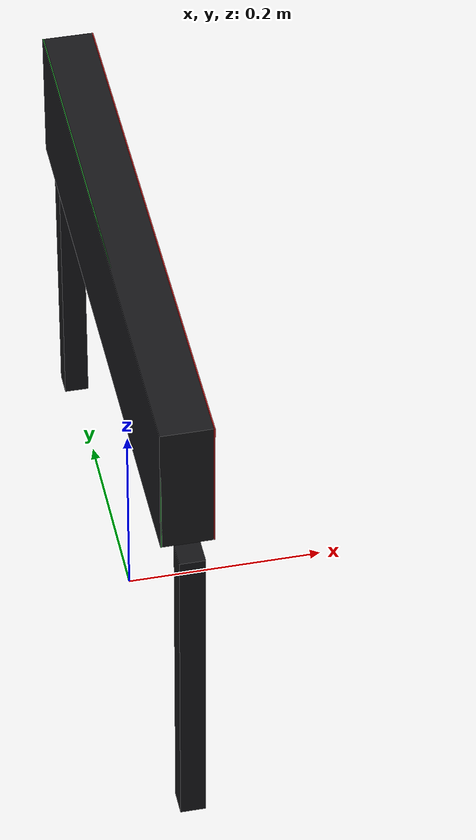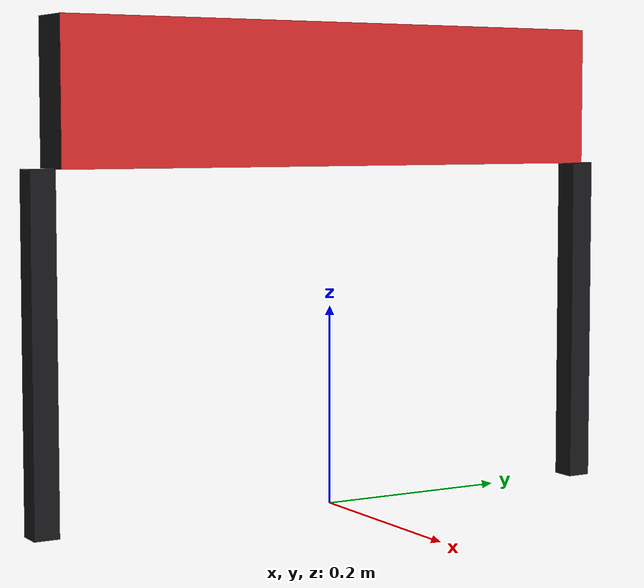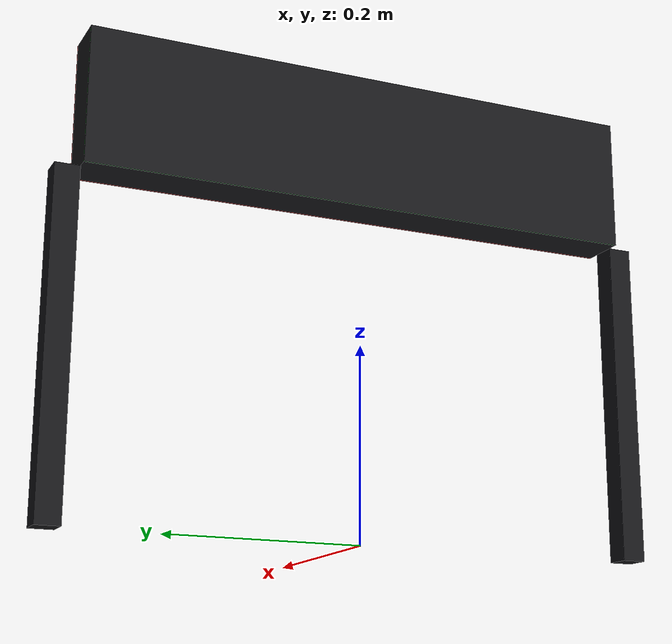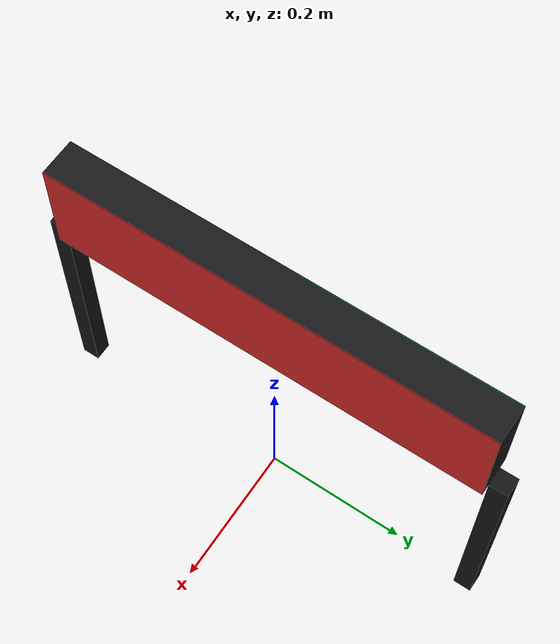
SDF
<?xml version='1.0'?>
<sdf version='1.6'><model name='sq_traffic_light_4p2'><static>true</static><pose>0.0000 0.0000 0.0000 0 0 0.00000</pose><link name='housing'><visual name='housing_vis'><pose>0.0000 0.0000 0.4100 0 0 0.00000</pose><geometry><box><size>0.0500 0.5900 0.1400</size></box></geometry><material><ambient>0.0900 0.0900 0.1000 1.0000</ambient><diffuse>0.0900 0.0900 0.1000 1.0000</diffuse></material></visual></link><link name='front_red'><pose>0.000 0 0 0 0 0</pose><visual name='face_vis'><pose>0.0260 0.0000 0.4100 0 0 0.00000</pose><geometry><box><size>0.0010 0.5900 0.1400</size></box></geometry><material><script><uri>model://sq_competition_assets/materials/scripts</uri><uri>model://sq_competition_assets/materials/textures</uri><name>SQ4_Light_Red</name></script><ambient>1 1 1 1</ambient><diffuse>1 1 1 1</diffuse></material></visual></link><link name='front_green'><pose>-0.050 0 0 0 0 0</pose><visual name='face_vis'><pose>0.0260 0.0000 0.4100 0 0 0.00000</pose><geometry><box><size>0.0010 0.5900 0.1400</size></box></geometry><material><script><uri>model://sq_competition_assets/materials/scripts</uri><uri>model://sq_competition_assets/materials/textures</uri><name>SQ4_Light_Green</name></script><ambient>1 1 1 1</ambient><diffuse>1 1 1 1</diffuse></material></visual></link><link name='front_yellow'><pose>-0.050 0 0 0 0 0</pose><visual name='face_vis'><pose>0.0260 0.0000 0.4100 0 0 0.00000</pose><geometry><box><size>0.0010 0.5900 0.1400</size></box></geometry><material><script><uri>model://sq_competition_assets/materials/scripts</uri><uri>model://sq_competition_assets/materials/textures</uri><name>SQ4_Light_Yellow</name></script><ambient>1 1 1 1</ambient><diffuse>1 1 1 1</diffuse></material></visual></link><link name='leg_left'><visual name='leg_left_vis'><pose>0.0000 -0.3075 0.1700 0 0 0.00000</pose><geometry><box><size>0.0250 0.0250 0.3400</size></box></geometry><material><ambient>0.0800 0.0800 0.0900 1.0000</ambient><diffuse>0.0800 0.0800 0.0900 1.0000</diffuse></material></visual><collision name='leg_left_col'><pose>0.0000 -0.3075 0.1700 0 0 0.00000</pose><geometry><box><size>0.0250 0.0250 0.3400</size></box></geometry></collision></link><link name='leg_right'><visual name='leg_right_vis'><pose>0.0000 0.3075 0.1700 0 0 0.00000</pose><geometry><box><size>0.0250 0.0250 0.3400</size></box></geometry><material><ambient>0.0800 0.0800 0.0900 1.0000</ambient><diffuse>0.0800 0.0800 0.0900 1.0000</diffuse></material></visual><collision name='leg_right_col'><pose>0.0000 0.3075 0.1700 0 0 0.00000</pose><geometry><box><size>0.0250 0.0250 0.3400</size></box></geometry></collision></link></model></sdf>
